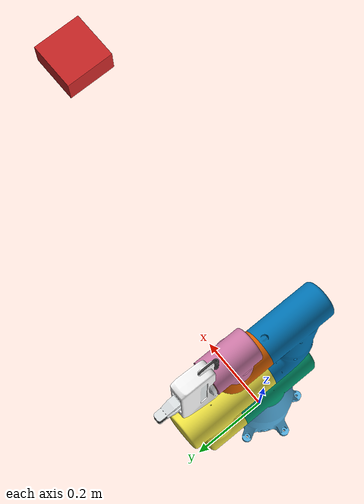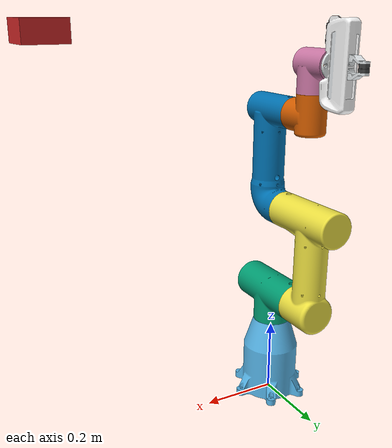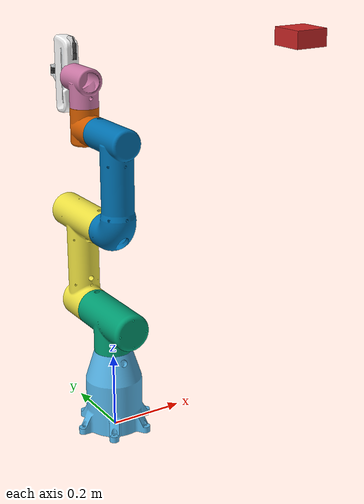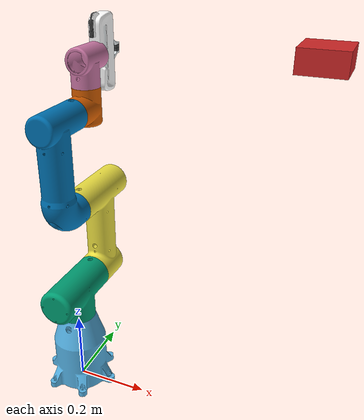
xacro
<?xml version="1.0"?>
<robot name="AutomateX" xmlns:xacro="http://www.ros.org/wiki/xacro">

  <xacro:include filename="$(find arm_description)/urdf/materials.xacro" />
  <xacro:include filename="$(find arm_description)/urdf/arm2.xacro" />
  <xacro:include filename="$(find arm_description)/urdf/sensors.xacro" />
  <xacro:include filename="$(find arm_description)/urdf/gazebo.xacro" />
  <xacro:include filename="$(find arm_description)/urdf/ros2control.xacro" />

</robot>

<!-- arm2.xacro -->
<robot name="AutomateX" xmlns:xacro="http://www.ros.org/wiki/xacro">

  <!-- Material Definition -->
  <material name="orange">
    <color rgba="0.996 0.580 0.176 1.0"/>
  </material>

  <!-- World Frame -->
  <link name="world"/>

  <!-- Link 0 - Base -->
  <link name="base_link">
    <visual>
      <geometry>
        <mesh filename="package://arm_description/meshes/collision/base_link.obj" scale="0.001 0.001 0.001"/>
      </geometry>
    </visual>
    <collision>
      <geometry>
        <mesh filename="package://arm_description/meshes/collision/base_link.obj" scale="0.001 0.001 0.001"/>
      </geometry>
    </collision>
      <inertial>
          <origin xyz="0 0 0" rpy="0.0 0.0 0.0"/>
          <mass value="0.1"/>
          <inertia ixx="0.1" ixy="0.0" ixz="0.0" iyy="0.1" iyz="0.0" izz="0.1"/>
      </inertial>
  </link>

  <!-- World-Base Joint -->
  <joint name="virtual_joint" type="fixed">
    <parent link="world"/>
    <child link="base_link"/>
    <origin xyz="0 0 0" rpy="0 0 0"/>
  </joint>

  <!-- Link 1 -->
  <link name="base_plate">
    <visual>
      <geometry>
        <mesh filename="package://arm_description/meshes/collision/base_plate.obj" scale="0.001 0.001 0.001"/>
      </geometry>
    </visual>
    <collision>
      <geometry>
        <mesh filename="package://arm_description/meshes/collision/base_plate.obj" scale="0.001 0.001 0.001"/>
      </geometry>
    </collision>
        <inertial>
            <origin xyz="0 0 0" rpy="0.0 0.0 0.0"/>
            <mass value="0.1"/>
            <inertia ixx="0.1" ixy="0.0" ixz="0.0" iyy="0.1" iyz="0.0" izz="0.1"/>
        </inertial>
  </link>

  <!-- Joint 1 -->
  <joint name="arm_joint1" type="revolute">
    <safety_controller k_position="100.0" k_velocity="40.0" soft_lower_limit="-6.2832" soft_upper_limit="6.2832"/>
    <origin rpy="0 0 0" xyz="0 0 0"/>
    <parent link="base_link"/>
    <child link="base_plate"/>
    <axis xyz="0 0 1"/>
    <limit effort="150.0" lower="-6.2832" upper="6.2832" velocity="3.15"/>
  </joint>

  <!-- Link 2 -->
  <link name="lower_arm">
    <visual>
      <origin xyz="0 0 -0.307026" rpy="0.0 0.0 0.0"/>
      <geometry>
        <mesh filename="package://arm_description/meshes/collision/lower_arm.obj" scale="0.001 0.001 0.001"/>
      </geometry>
    </visual>
    <collision>
      <geometry>
        <mesh filename="package://arm_description/meshes/collision/lower_arm.obj" scale="0.001 0.001 0.001"/>
      </geometry>
    </collision>
        <inertial>
          <origin xyz="0 0 0" rpy="0.0 0.0 0.0"/>
          <mass value="0.1"/>
          <inertia ixx="0.1" ixy="0.0" ixz="0.0" iyy="0.1" iyz="0.0" izz="0.1"/>
      </inertial>
  </link>

  <!-- Joint 2 -->
  <joint name="arm_joint2" type="revolute">
    <safety_controller k_position="100.0" k_velocity="40.0" soft_lower_limit="-6.2832" soft_upper_limit="6.2832"/>
    <origin rpy="0 0 0" xyz="0 0 0.307026"/>
    <parent link="base_plate"/>
    <child link="lower_arm"/>
    <axis xyz="0 1 0"/>
    <limit effort="150.0" lower="-6.2832" upper="6.2832" velocity="3.15"/>
  </joint>

  <!-- Link 3 -->
  <link name="upper_arm">
    <visual>
      <origin xyz="0 0 -0.550278" rpy="0.0 0.0 0.0"/>
      <geometry>
        <mesh filename="package://arm_description/meshes/collision/upper_arm.obj" scale="0.001 0.001 0.001"/>
      </geometry>
    </visual>
    <collision>
      <geometry>
        <mesh filename="package://arm_description/meshes/collision/upper_arm.obj" scale="0.001 0.001 0.001"/>
      </geometry>
    </collision>
      <inertial>
          <origin xyz="0 0 0" rpy="0.0 0.0 0.0"/>
          <mass value="0.1"/>
          <inertia ixx="0.1" ixy="0.0" ixz="0.0" iyy="0.1" iyz="0.0" izz="0.1"/>
      </inertial>
  </link>

  <!-- Joint 3 -->
  <joint name="arm_joint3" type="revolute">
    <safety_controller k_position="100.0" k_velocity="40.0" soft_lower_limit="-3.1416" soft_upper_limit="3.1416"/>
    <origin rpy="0 0 0" xyz="0 0 0.243252"/>
    <parent link="lower_arm"/>
    <child link="upper_arm"/>
    <axis xyz="0 1 0"/>
    <limit effort="150.0" lower="-3.1416" upper="3.1416" velocity="3.15"/>
  </joint>

  <!-- Link 4 -->
  <link name="wrist_1">
    <visual>
      <origin xyz="0 0 -0.800024" rpy="0.0 0.0 0.0"/>
      <geometry>
        <mesh filename="package://arm_description/meshes/collision/wrist_1.obj" scale="0.001 0.001 0.001"/>
      </geometry>
    </visual>
    <collision>
      <geometry>
        <mesh filename="package://arm_description/meshes/collision/wrist_1.obj" scale="0.001 0.001 0.001"/>
      </geometry>
    </collision>
      <inertial>
          <origin xyz="0 0 0" rpy="0.0 0.0 0.0"/>
          <mass value="0.1"/>
          <inertia ixx="0.1" ixy="0.0" ixz="0.0" iyy="0.1" iyz="0.0" izz="0.1"/>
      </inertial>
  </link>

  <!-- Joint 4 -->
  <joint name="arm_joint4" type="revolute">
    <safety_controller k_position="100.0" k_velocity="40.0" soft_lower_limit="-6.2832" soft_upper_limit="6.2832"/>
    <origin rpy="0 0 0" xyz="0 0 0.249746"/>
    <parent link="upper_arm"/>
    <child link="wrist_1"/>
    <axis xyz="0 1 0"/>
    <limit effort="54.0" lower="-6.2832" upper="6.2832" velocity="3.2"/>
  </joint>

  <!-- Link 5 -->
  <link name="wrist_2">
    <visual>
      <origin xyz="0 -0.122627 -0.800024" rpy="0.0 0.0 0.0"/>
      <geometry>
        <mesh filename="package://arm_description/meshes/collision/wrist_2.obj" scale="0.001 0.001 0.001"/>
      </geometry>
    </visual>
    <collision>
      <geometry>
        <mesh filename="package://arm_description/meshes/collision/wrist_2.obj" scale="0.001 0.001 0.001"/>
      </geometry>
    </collision>
      <inertial>
          <origin xyz="0 0 0" rpy="0.0 0.0 0.0"/>
          <mass value="0.1"/>
          <inertia ixx="0.1" ixy="0.0" ixz="0.0" iyy="0.1" iyz="0.0" izz="0.1"/>
      </inertial>
  </link>

  <!-- Joint 5 -->
  <joint name="arm_joint5" type="revolute">
    <safety_controller k_position="100.0" k_velocity="40.0" soft_lower_limit="-6.2832" soft_upper_limit="6.2832"/>
    <origin rpy="0 0 0" xyz="0 0.122627 0"/>
    <parent link="wrist_1"/>
    <child link="wrist_2"/>
    <axis xyz="0 0 1"/>
    <limit effort="54.0" lower="-6.2832" upper="6.2832" velocity="3.2"/>
  </joint>

  <!-- Link 6 -->
  <link name="wrist_3">
    <visual>
      <origin xyz="0 -0.122627 -0.854858" rpy="0.0 0.0 0.0"/>
      <geometry>
        <mesh filename="package://arm_description/meshes/wrist_3.stl" scale="0.001 0.001 0.001"/>
      </geometry>
      <material name="orange"/>
    </visual>
    <collision>
      <geometry>
        <mesh filename="package://arm_description/meshes/wrist_3.stl" scale="0.001 0.001 0.001"/>
      </geometry>
    </collision>
      <inertial>
          <origin xyz="0 0 0" rpy="0.0 0.0 0.0"/>
          <mass value="0.1"/>
          <inertia ixx="0.1" ixy="0.0" ixz="0.0" iyy="0.1" iyz="0.0" izz="0.1"/>
      </inertial>
  </link>

  <!-- Joint 6 -->
  <joint name="arm_joint6" type="revolute">
    <safety_controller k_position="100.0" k_velocity="40.0" soft_lower_limit="-6.2832" soft_upper_limit="6.2832"/>
    <origin rpy="0 0 0" xyz="0 0 0.123876"/>
    <parent link="wrist_2"/>
    <child link="wrist_3"/>
    <axis xyz="0 1 0"/>
    <limit effort="54.0" lower="-6.2832" upper="6.2832" velocity="3.2"/>
  </joint>

  <!-- Hand Link -->
  <link name="panda_hand">
    <visual>
      <geometry>
        <mesh filename="package://arm_description/meshes/visual/hand.dae"/>
      </geometry>
    </visual>
    <collision>
      <geometry>
        <mesh filename="package://arm_description/meshes/collision/hand.obj"/>
      </geometry>
    </collision>
      <inertial>
          <origin xyz="0 0 0" rpy="0.0 0.0 0.0"/>
          <mass value="0.1"/>
          <inertia ixx="0.1" ixy="0.0" ixz="0.0" iyy="0.1" iyz="0.0" izz="0.1"/>
      </inertial>
  </link>

  <!-- Hand Joint -->
  <joint name="panda_hand_joint" type="fixed">
    <parent link="wrist_3"/>
    <child link="panda_hand"/>
    <origin rpy="-1.57079632679 0 0" xyz="0 0.062681 0"/>
  </joint>

  <!-- Left Finger Link -->
  <link name="panda_leftfinger">
    <visual>
      <geometry>
        <mesh filename="package://arm_description/meshes/visual/finger.dae"/>
      </geometry>
    </visual>
    <collision>
      <geometry>
        <mesh filename="package://arm_description/meshes/collision/finger.obj"/>
      </geometry>
    </collision>
      <inertial>
          <origin xyz="0 0 0" rpy="0.0 0.0 0.0"/>
          <mass value="0.1"/>
          <inertia ixx="0.1" ixy="0.0" ixz="0.0" iyy="0.1" iyz="0.0" izz="0.1"/>
      </inertial>
  </link>

  <!-- Right Finger Link -->
  <link name="panda_rightfinger">
    <visual>
      <origin rpy="0 0 3.14159265359" xyz="0 0 0"/>
      <geometry>
        <mesh filename="package://arm_description/meshes/visual/finger.dae"/>
      </geometry>
    </visual>
    <collision>
      <origin rpy="0 0 3.14159265359" xyz="0 0 0"/>
      <geometry>
        <mesh filename="package://arm_description/meshes/collision/finger.obj"/>
      </geometry>
    </collision>
      <inertial>
          <origin xyz="0 0 0" rpy="0.0 0.0 0.0"/>
          <mass value="0.1"/>
          <inertia ixx="0.1" ixy="0.0" ixz="0.0" iyy="0.1" iyz="0.0" izz="0.1"/>
      </inertial>
  </link>

  <!-- Finger Joint 1 -->
  <joint name="panda_finger_joint1" type="prismatic">
    <parent link="panda_hand"/>
    <child link="panda_leftfinger"/>
    <origin rpy="0 0 0" xyz="0 0 0.0584"/>
    <axis xyz="0 1 0"/>
    <limit effort="30.0" lower="0.0" upper="0.04" velocity="10.0"/>
  </joint>

  <!-- Finger Joint 2 -->
  <joint name="panda_finger_joint2" type="prismatic">
    <parent link="panda_hand"/>
    <child link="panda_rightfinger"/>
    <origin rpy="0 0 0" xyz="0 0 0.0584"/>
    <axis xyz="0 -1 0"/>
    <limit effort="30.0" lower="0.0" upper="0.04" velocity="10.0"/>
  </joint>

</robot>

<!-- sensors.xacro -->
<robot name="AutomateX" xmlns:xacro="http://www.ros.org/wiki/xacro">

    <link name="camera_link">
        <inertial>
            <origin xyz="0 0 0" rpy="0.0 0.0 0.0"/>
            <mass value="0.1"/>
            <inertia ixx="0.1" ixy="0.0" ixz="0.0" iyy="0.1" iyz="0.0" izz="0.1"/>
        </inertial>
        <visual>
            <origin xyz="0 0 0" rpy="0.0 0.0 0.0"/>
            <geometry>
                <box size="0.1 0.1 0.05"/>
            </geometry>
            <material name="red"/>
        </visual>
        <collision>
            <origin xyz="0 0 0" rpy="0.0 0.0 0.0"/>
            <geometry>
                <box size="0.1 0.1 0.05"/>
            </geometry>
            <material name="red"/>
        </collision>
    </link>

    <joint name="camera_joint" type="fixed">
        <origin xyz="0.6 0 1.0" rpy="0.0 0.0 0.0"/>
        <parent link="base_link"/>
        <child link="camera_link"/>
    </joint>

    <link name="camera_link_optical" />

    <joint name="camera_optical_joint" type="fixed">
        <parent link="camera_link"/>
        <child link="camera_link_optical"/>
        <origin xyz="0 0 0" rpy="${-pi/2} 0 ${-pi/2}"/>
    </joint>

    <gazebo reference="camera_link">
        <sensor name="camera" type="camera">
            <pose>0 0 0 0 1.57 0</pose>
            <visualize>true</visualize>
            <update_rate>10.0</update_rate>
            <alwaysOn>true</alwaysOn>
            <topic>camera/image_raw</topic>
            <gz_frame_id>camera_link_optical</gz_frame_id>
            <camera name="intel_realsense_r200">
                <camera_info_topic>camera/camera_info</camera_info_topic>
                <horizontal_fov>1.0</horizontal_fov>
                <image>
                    <width>640</width>
                    <height>320</height>
                    <format>R8G8B8</format>
                </image>
                <clip>
                    <near>0.05</near>
                    <far>8.0</far>
                </clip>
            </camera>
        </sensor>
  </gazebo>

</robot>
